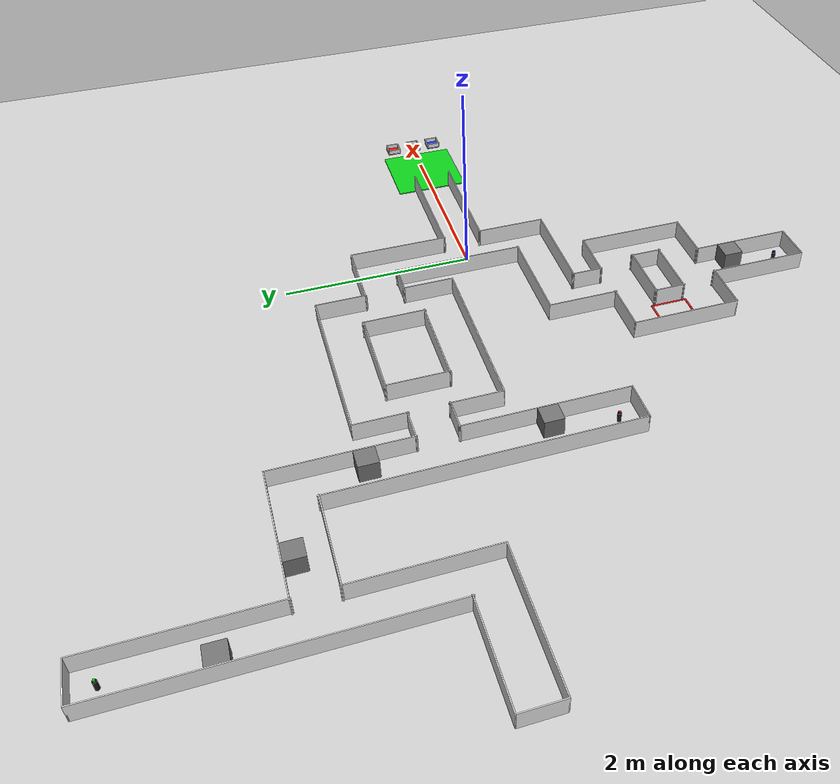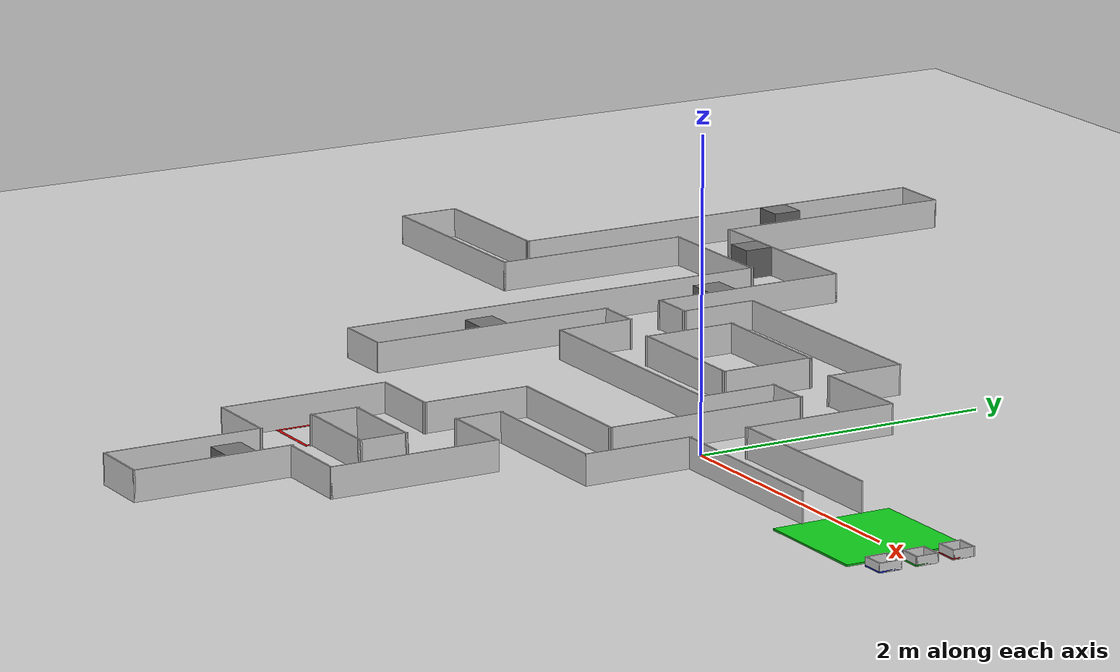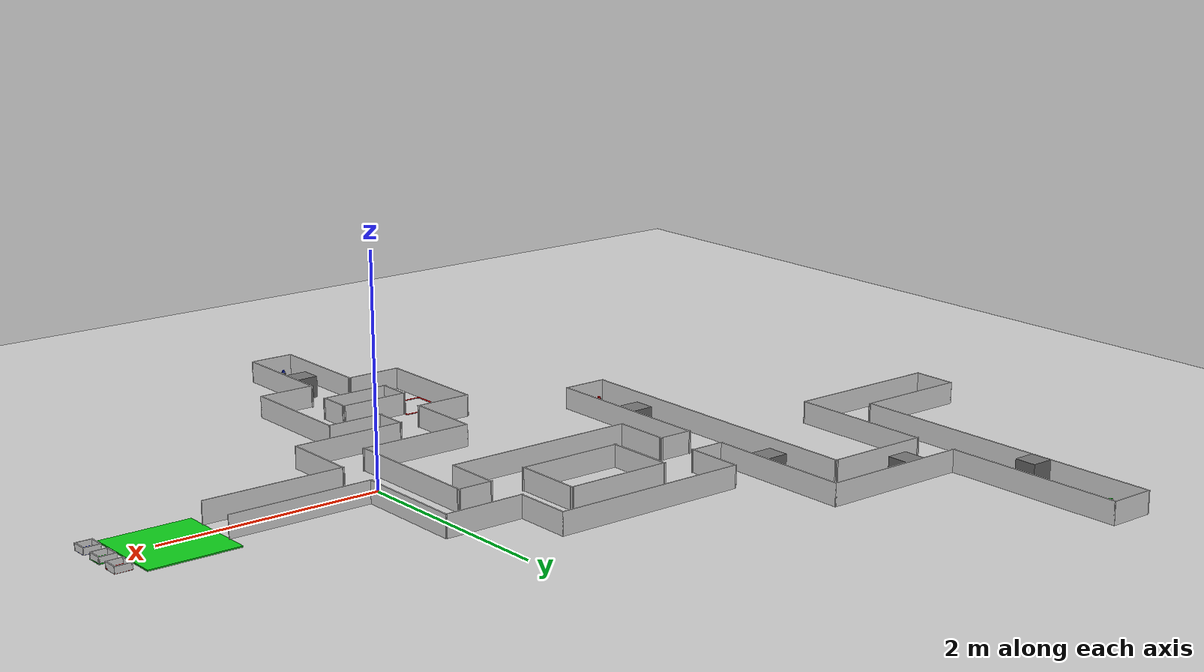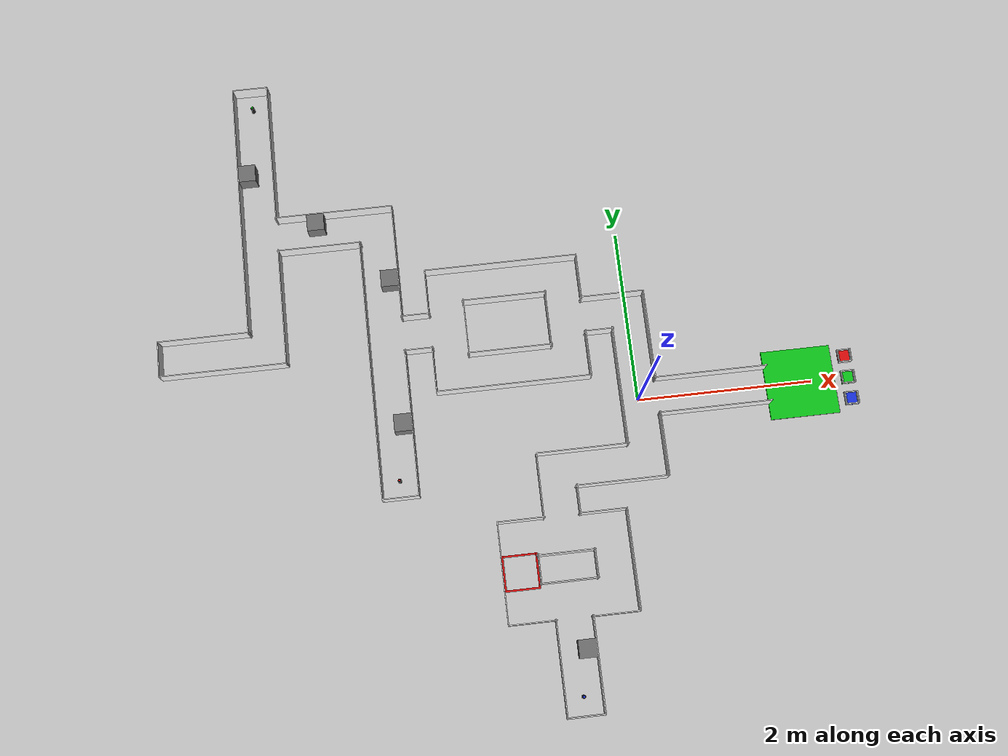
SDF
<sdf version="1.9">
 <world name="colored_objects">
  <physics name="1ms" type="ignored">
   <max_step_size>0.001</max_step_size>
   <real_time_factor>1.0</real_time_factor>
  </physics>
  <plugin filename="gz-sim-physics-system" name="gz::sim::systems::Physics"/>
  <plugin filename="gz-sim-user-commands-system" name="gz::sim::systems::UserCommands"/>
  <plugin filename="gz-sim-scene-broadcaster-system" name="gz::sim::systems::SceneBroadcaster"/>
  <plugin filename="gz-sim-sensors-system" name="gz::sim::systems::Sensors">
   <render_engine>ogre2</render_engine>
  </plugin>
  <light name="sun" type="directional">
   <pose>0 0 10 0 0 0</pose>
   <diffuse>0.9 0.9 0.9 1</diffuse>
   <specular>0.2 0.2 0.2 1</specular>
   <direction>-0.5 0.1 -0.9</direction>
  </light>
  <model name="ground_plane">
   <static>true</static>
   <link name="link">
    <collision name="collision">
     <geometry><plane><normal>0 0 1</normal><size>20 20</size></plane></geometry>
    </collision>
    <visual name="visual">
     <geometry><plane><normal>0 0 1</normal><size>20 20</size></plane></geometry>
     <material>
      <ambient>0.8 0.8 0.8 1</ambient>
      <diffuse>0.8 0.8 0.8 1</diffuse>
      <specular>0.1 0.1 0.1 1</specular>
     </material>
    </visual>
   </link>
  </model>
  <model name="pared_0">
   <static>true</static>
   <pose>-5.405 1.04 0.1 0 0 0</pose>
   <link name="link">
    <collision name="collision"><geometry><box><size>0.01 0.42 0.2</size></box></geometry></collision>
    <visual name="visual">
     <geometry><box><size>0.01 0.42 0.2</size></box></geometry>
     <material>
      <ambient>0.92 0.92 0.92 1</ambient>
      <diffuse>0.92 0.92 0.92 1</diffuse>
      <specular>0.1 0.1 0.1 1</specular>
     </material>
    </visual>
   </link>
  </model>
  <model name="pared_1">
   <static>true</static>
   <pose>-4.365 2.76 0.1 0 0 0</pose>
   <link name="link">
    <collision name="collision"><geometry><box><size>0.01 3.06 0.2</size></box></geometry></collision>
    <visual name="visual">
     <geometry><box><size>0.01 3.06 0.2</size></box></geometry>
     <material>
      <ambient>0.92 0.92 0.92 1</ambient>
      <diffuse>0.92 0.92 0.92 1</diffuse>
      <specular>0.1 0.1 0.1 1</specular>
     </material>
    </visual>
   </link>
  </model>
  <model name="pared_2">
   <static>true</static>
   <pose>-3.955 1.52 0.1 0 0 0</pose>
   <link name="link">
    <collision name="collision"><geometry><box><size>0.01 1.38 0.2</size></box></geometry></collision>
    <visual name="visual">
     <geometry><box><size>0.01 1.38 0.2</size></box></geometry>
     <material>
      <ambient>0.92 0.92 0.92 1</ambient>
      <diffuse>0.92 0.92 0.92 1</diffuse>
      <specular>0.1 0.1 0.1 1</specular>
     </material>
    </visual>
   </link>
  </model>
  <model name="pared_3">
   <static>true</static>
   <pose>-3.955 3.44 0.1 0 0 0</pose>
   <link name="link">
    <collision name="collision"><geometry><box><size>0.01 1.7 0.2</size></box></geometry></collision>
    <visual name="visual">
     <geometry><box><size>0.01 1.7 0.2</size></box></geometry>
     <material>
      <ambient>0.92 0.92 0.92 1</ambient>
      <diffuse>0.92 0.92 0.92 1</diffuse>
      <specular>0.1 0.1 0.1 1</specular>
     </material>
    </visual>
   </link>
  </model>
  <model name="pared_4">
   <static>true</static>
   <pose>-3.005 0.68 0.1 0 0 0</pose>
   <link name="link">
    <collision name="collision"><geometry><box><size>0.01 3.06 0.2</size></box></geometry></collision>
    <visual name="visual">
     <geometry><box><size>0.01 3.06 0.2</size></box></geometry>
     <material>
      <ambient>0.92 0.92 0.92 1</ambient>
      <diffuse>0.92 0.92 0.92 1</diffuse>
      <specular>0.1 0.1 0.1 1</specular>
     </material>
    </visual>
   </link>
  </model>
  <model name="pared_5">
   <static>true</static>
   <pose>-2.595 0.0 0.1 0 0 0</pose>
   <link name="link">
    <collision name="collision"><geometry><box><size>0.01 1.7 0.2</size></box></geometry></collision>
    <visual name="visual">
     <geometry><box><size>0.01 1.7 0.2</size></box></geometry>
     <material>
      <ambient>0.92 0.92 0.92 1</ambient>
      <diffuse>0.92 0.92 0.92 1</diffuse>
      <specular>0.1 0.1 0.1 1</specular>
     </material>
    </visual>
   </link>
  </model>
  <model name="pared_6">
   <static>true</static>
   <pose>-2.595 1.92 0.1 0 0 0</pose>
   <link name="link">
    <collision name="collision"><geometry><box><size>0.01 1.38 0.2</size></box></geometry></collision>
    <visual name="visual">
     <geometry><box><size>0.01 1.38 0.2</size></box></geometry>
     <material>
      <ambient>0.92 0.92 0.92 1</ambient>
      <diffuse>0.92 0.92 0.92 1</diffuse>
      <specular>0.1 0.1 0.1 1</specular>
     </material>
    </visual>
   </link>
  </model>
  <model name="pared_7">
   <static>true</static>
   <pose>-2.285 0.58 0.1 0 0 0</pose>
   <link name="link">
    <collision name="collision"><geometry><box><size>0.01 0.54 0.2</size></box></geometry></collision>
    <visual name="visual">
     <geometry><box><size>0.01 0.54 0.2</size></box></geometry>
     <material>
      <ambient>0.92 0.92 0.92 1</ambient>
      <diffuse>0.92 0.92 0.92 1</diffuse>
      <specular>0.1 0.1 0.1 1</specular>
     </material>
    </visual>
   </link>
  </model>
  <model name="pared_8">
   <static>true</static>
   <pose>-2.285 1.5 0.1 0 0 0</pose>
   <link name="link">
    <collision name="collision"><geometry><box><size>0.01 0.54 0.2</size></box></geometry></collision>
    <visual name="visual">
     <geometry><box><size>0.01 0.54 0.2</size></box></geometry>
     <material>
      <ambient>0.92 0.92 0.92 1</ambient>
      <diffuse>0.92 0.92 0.92 1</diffuse>
      <specular>0.1 0.1 0.1 1</specular>
     </material>
    </visual>
   </link>
  </model>
  <model name="pared_9">
   <static>true</static>
   <pose>-1.875 1.04 0.1 0 0 0</pose>
   <link name="link">
    <collision name="collision"><geometry><box><size>0.01 0.66 0.2</size></box></geometry></collision>
    <visual name="visual">
     <geometry><box><size>0.01 0.66 0.2</size></box></geometry>
     <material>
      <ambient>0.92 0.92 0.92 1</ambient>
      <diffuse>0.92 0.92 0.92 1</diffuse>
      <specular>0.1 0.1 0.1 1</specular>
     </material>
    </visual>
   </link>
  </model>
  <model name="pared_10">
   <static>true</static>
   <pose>-1.765 -1.8 0.1 0 0 0</pose>
   <link name="link">
    <collision name="collision"><geometry><box><size>0.01 1.14 0.2</size></box></geometry></collision>
    <visual name="visual">
     <geometry><box><size>0.01 1.14 0.2</size></box></geometry>
     <material>
      <ambient>0.92 0.92 0.92 1</ambient>
      <diffuse>0.92 0.92 0.92 1</diffuse>
      <specular>0.1 0.1 0.1 1</specular>
     </material>
    </visual>
   </link>
  </model>
  <model name="pared_11">
   <static>true</static>
   <pose>-1.355 -1.8 0.1 0 0 0</pose>
   <link name="link">
    <collision name="collision"><geometry><box><size>0.01 0.34 0.2</size></box></geometry></collision>
    <visual name="visual">
     <geometry><box><size>0.01 0.34 0.2</size></box></geometry>
     <material>
      <ambient>0.92 0.92 0.92 1</ambient>
      <diffuse>0.92 0.92 0.92 1</diffuse>
      <specular>0.1 0.1 0.1 1</specular>
     </material>
    </visual>
   </link>
  </model>
  <model name="pared_12">
   <static>true</static>
   <pose>-1.245 -2.88 0.1 0 0 0</pose>
   <link name="link">
    <collision name="collision"><geometry><box><size>0.01 1.06 0.2</size></box></geometry></collision>
    <visual name="visual">
     <geometry><box><size>0.01 1.06 0.2</size></box></geometry>
     <material>
      <ambient>0.92 0.92 0.92 1</ambient>
      <diffuse>0.92 0.92 0.92 1</diffuse>
      <specular>0.1 0.1 0.1 1</specular>
     </material>
    </visual>
   </link>
  </model>
  <model name="pared_13">
   <static>true</static>
   <pose>-1.245 -0.88 0.1 0 0 0</pose>
   <link name="link">
    <collision name="collision"><geometry><box><size>0.01 0.74 0.2</size></box></geometry></collision>
    <visual name="visual">
     <geometry><box><size>0.01 0.74 0.2</size></box></geometry>
     <material>
      <ambient>0.92 0.92 0.92 1</ambient>
      <diffuse>0.92 0.92 0.92 1</diffuse>
      <specular>0.1 0.1 0.1 1</specular>
     </material>
    </visual>
   </link>
  </model>
  <model name="pared_14">
   <static>true</static>
   <pose>-0.925 1.04 0.1 0 0 0</pose>
   <link name="link">
    <collision name="collision"><geometry><box><size>0.01 0.66 0.2</size></box></geometry></collision>
    <visual name="visual">
     <geometry><box><size>0.01 0.66 0.2</size></box></geometry>
     <material>
      <ambient>0.92 0.92 0.92 1</ambient>
      <diffuse>0.92 0.92 0.92 1</diffuse>
      <specular>0.1 0.1 0.1 1</specular>
     </material>
    </visual>
   </link>
  </model>
  <model name="pared_15">
   <static>true</static>
   <pose>-0.835 -2.88 0.1 0 0 0</pose>
   <link name="link">
    <collision name="collision"><geometry><box><size>0.01 1.06 0.2</size></box></geometry></collision>
    <visual name="visual">
     <geometry><box><size>0.01 1.06 0.2</size></box></geometry>
     <material>
      <ambient>0.92 0.92 0.92 1</ambient>
      <diffuse>0.92 0.92 0.92 1</diffuse>
      <specular>0.1 0.1 0.1 1</specular>
     </material>
    </visual>
   </link>
  </model>
  <model name="pared_16">
   <static>true</static>
   <pose>-0.835 -1.08 0.1 0 0 0</pose>
   <link name="link">
    <collision name="collision"><geometry><box><size>0.01 0.34 0.2</size></box></geometry></collision>
    <visual name="visual">
     <geometry><box><size>0.01 0.34 0.2</size></box></geometry>
     <material>
      <ambient>0.92 0.92 0.92 1</ambient>
      <diffuse>0.92 0.92 0.92 1</diffuse>
      <specular>0.1 0.1 0.1 1</specular>
     </material>
    </visual>
   </link>
  </model>
  <model name="pared_17">
   <static>true</static>
   <pose>-0.725 -1.8 0.1 0 0 0</pose>
   <link name="link">
    <collision name="collision"><geometry><box><size>0.01 0.34 0.2</size></box></geometry></collision>
    <visual name="visual">
     <geometry><box><size>0.01 0.34 0.2</size></box></geometry>
     <material>
      <ambient>0.92 0.92 0.92 1</ambient>
      <diffuse>0.92 0.92 0.92 1</diffuse>
      <specular>0.1 0.1 0.1 1</specular>
     </material>
    </visual>
   </link>
  </model>
  <model name="pared_18">
   <static>true</static>
   <pose>-0.515 0.58 0.1 0 0 0</pose>
   <link name="link">
    <collision name="collision"><geometry><box><size>0.01 0.54 0.2</size></box></geometry></collision>
    <visual name="visual">
     <geometry><box><size>0.01 0.54 0.2</size></box></geometry>
     <material>
      <ambient>0.92 0.92 0.92 1</ambient>
      <diffuse>0.92 0.92 0.92 1</diffuse>
      <specular>0.1 0.1 0.1 1</specular>
     </material>
    </visual>
   </link>
  </model>
  <model name="pared_19">
   <static>true</static>
   <pose>-0.515 1.5 0.1 0 0 0</pose>
   <link name="link">
    <collision name="collision"><geometry><box><size>0.01 0.54 0.2</size></box></geometry></collision>
    <visual name="visual">
     <geometry><box><size>0.01 0.54 0.2</size></box></geometry>
     <material>
      <ambient>0.92 0.92 0.92 1</ambient>
      <diffuse>0.92 0.92 0.92 1</diffuse>
      <specular>0.1 0.1 0.1 1</specular>
     </material>
    </visual>
   </link>
  </model>
  <model name="pared_20">
   <static>true</static>
   <pose>-0.315 -1.8 0.1 0 0 0</pose>
   <link name="link">
    <collision name="collision"><geometry><box><size>0.01 1.14 0.2</size></box></geometry></collision>
    <visual name="visual">
     <geometry><box><size>0.01 1.14 0.2</size></box></geometry>
     <material>
      <ambient>0.92 0.92 0.92 1</ambient>
      <diffuse>0.92 0.92 0.92 1</diffuse>
      <specular>0.1 0.1 0.1 1</specular>
     </material>
    </visual>
   </link>
  </model>
  <model name="pared_21">
   <static>true</static>
   <pose>-0.205 0.16 0.1 0 0 0</pose>
   <link name="link">
    <collision name="collision"><geometry><box><size>0.01 1.38 0.2</size></box></geometry></collision>
    <visual name="visual">
     <geometry><box><size>0.01 1.38 0.2</size></box></geometry>
     <material>
      <ambient>0.92 0.92 0.92 1</ambient>
      <diffuse>0.92 0.92 0.92 1</diffuse>
      <specular>0.1 0.1 0.1 1</specular>
     </material>
    </visual>
   </link>
  </model>
  <model name="pared_22">
   <static>true</static>
   <pose>0.205 -0.56 0.1 0 0 0</pose>
   <link name="link">
    <collision name="collision"><geometry><box><size>0.01 0.74 0.2</size></box></geometry></collision>
    <visual name="visual">
     <geometry><box><size>0.01 0.74 0.2</size></box></geometry>
     <material>
      <ambient>0.92 0.92 0.92 1</ambient>
      <diffuse>0.92 0.92 0.92 1</diffuse>
      <specular>0.1 0.1 0.1 1</specular>
     </material>
    </visual>
   </link>
  </model>
  <model name="pared_23">
   <static>true</static>
   <pose>0.205 0.72 0.1 0 0 0</pose>
   <link name="link">
    <collision name="collision"><geometry><box><size>0.01 1.06 0.2</size></box></geometry></collision>
    <visual name="visual">
     <geometry><box><size>0.01 1.06 0.2</size></box></geometry>
     <material>
      <ambient>0.92 0.92 0.92 1</ambient>
      <diffuse>0.92 0.92 0.92 1</diffuse>
      <specular>0.1 0.1 0.1 1</specular>
     </material>
    </visual>
   </link>
  </model>
  <model name="pared_24">
   <static>true</static>
   <pose>-1.04 -3.405 0.1 0 0 0</pose>
   <link name="link">
    <collision name="collision"><geometry><box><size>0.42 0.01 0.2</size></box></geometry></collision>
    <visual name="visual">
     <geometry><box><size>0.42 0.01 0.2</size></box></geometry>
     <material>
      <ambient>0.92 0.92 0.92 1</ambient>
      <diffuse>0.92 0.92 0.92 1</diffuse>
      <specular>0.1 0.1 0.1 1</specular>
     </material>
    </visual>
   </link>
  </model>
  <model name="pared_25">
   <static>true</static>
   <pose>-1.5 -2.365 0.1 0 0 0</pose>
   <link name="link">
    <collision name="collision"><geometry><box><size>0.54 0.01 0.2</size></box></geometry></collision>
    <visual name="visual">
     <geometry><box><size>0.54 0.01 0.2</size></box></geometry>
     <material>
      <ambient>0.92 0.92 0.92 1</ambient>
      <diffuse>0.92 0.92 0.92 1</diffuse>
      <specular>0.1 0.1 0.1 1</specular>
     </material>
    </visual>
   </link>
  </model>
  <model name="pared_26">
   <static>true</static>
   <pose>-0.58 -2.365 0.1 0 0 0</pose>
   <link name="link">
    <collision name="collision"><geometry><box><size>0.54 0.01 0.2</size></box></geometry></collision>
    <visual name="visual">
     <geometry><box><size>0.54 0.01 0.2</size></box></geometry>
     <material>
      <ambient>0.92 0.92 0.92 1</ambient>
      <diffuse>0.92 0.92 0.92 1</diffuse>
      <specular>0.1 0.1 0.1 1</specular>
     </material>
    </visual>
   </link>
  </model>
  <model name="pared_27">
   <static>true</static>
   <pose>-1.04 -1.955 0.1 0 0 0</pose>
   <link name="link">
    <collision name="collision"><geometry><box><size>0.66 0.01 0.2</size></box></geometry></collision>
    <visual name="visual">
     <geometry><box><size>0.66 0.01 0.2</size></box></geometry>
     <material>
      <ambient>0.92 0.92 0.92 1</ambient>
      <diffuse>0.92 0.92 0.92 1</diffuse>
      <specular>0.1 0.1 0.1 1</specular>
     </material>
    </visual>
   </link>
  </model>
  <model name="pared_28">
   <static>true</static>
   <pose>-1.04 -1.645 0.1 0 0 0</pose>
   <link name="link">
    <collision name="collision"><geometry><box><size>0.66 0.01 0.2</size></box></geometry></collision>
    <visual name="visual">
     <geometry><box><size>0.66 0.01 0.2</size></box></geometry>
     <material>
      <ambient>0.92 0.92 0.92 1</ambient>
      <diffuse>0.92 0.92 0.92 1</diffuse>
      <specular>0.1 0.1 0.1 1</specular>
     </material>
    </visual>
   </link>
  </model>
  <model name="pared_29">
   <static>true</static>
   <pose>-1.5 -1.235 0.1 0 0 0</pose>
   <link name="link">
    <collision name="collision"><geometry><box><size>0.54 0.01 0.2</size></box></geometry></collision>
    <visual name="visual">
     <geometry><box><size>0.54 0.01 0.2</size></box></geometry>
     <material>
      <ambient>0.92 0.92 0.92 1</ambient>
      <diffuse>0.92 0.92 0.92 1</diffuse>
      <specular>0.1 0.1 0.1 1</specular>
     </material>
    </visual>
   </link>
  </model>
  <model name="pared_30">
   <static>true</static>
   <pose>-0.58 -1.235 0.1 0 0 0</pose>
   <link name="link">
    <collision name="collision"><geometry><box><size>0.54 0.01 0.2</size></box></geometry></collision>
    <visual name="visual">
     <geometry><box><size>0.54 0.01 0.2</size></box></geometry>
     <material>
      <ambient>0.92 0.92 0.92 1</ambient>
      <diffuse>0.92 0.92 0.92 1</diffuse>
      <specular>0.1 0.1 0.1 1</specular>
     </material>
    </visual>
   </link>
  </model>
  <model name="pared_31">
   <static>true</static>
   <pose>-0.32 -0.925 0.1 0 0 0</pose>
   <link name="link">
    <collision name="collision"><geometry><box><size>1.06 0.01 0.2</size></box></geometry></collision>
    <visual name="visual">
     <geometry><box><size>1.06 0.01 0.2</size></box></geometry>
     <material>
      <ambient>0.92 0.92 0.92 1</ambient>
      <diffuse>0.92 0.92 0.92 1</diffuse>
      <specular>0.1 0.1 0.1 1</specular>
     </material>
    </visual>
   </link>
  </model>
  <model name="pared_32">
   <static>true</static>
   <pose>-2.8 -0.845 0.1 0 0 0</pose>
   <link name="link">
    <collision name="collision"><geometry><box><size>0.42 0.01 0.2</size></box></geometry></collision>
    <visual name="visual">
     <geometry><box><size>0.42 0.01 0.2</size></box></geometry>
     <material>
      <ambient>0.92 0.92 0.92 1</ambient>
      <diffuse>0.92 0.92 0.92 1</diffuse>
      <specular>0.1 0.1 0.1 1</specular>
     </material>
    </visual>
   </link>
  </model>
  <model name="pared_33">
   <static>true</static>
   <pose>-0.72 -0.515 0.1 0 0 0</pose>
   <link name="link">
    <collision name="collision"><geometry><box><size>1.06 0.01 0.2</size></box></geometry></collision>
    <visual name="visual">
     <geometry><box><size>1.06 0.01 0.2</size></box></geometry>
     <material>
      <ambient>0.92 0.92 0.92 1</ambient>
      <diffuse>0.92 0.92 0.92 1</diffuse>
      <specular>0.1 0.1 0.1 1</specular>
     </material>
    </visual>
   </link>
  </model>
  <model name="pared_34">
   <static>true</static>
   <pose>0.84 -0.205 0.1 0 0 0</pose>
   <link name="link">
    <collision name="collision"><geometry><box><size>1.3 0.01 0.2</size></box></geometry></collision>
    <visual name="visual">
     <geometry><box><size>1.3 0.01 0.2</size></box></geometry>
     <material>
      <ambient>0.92 0.92 0.92 1</ambient>
      <diffuse>0.92 0.92 0.92 1</diffuse>
      <specular>0.1 0.1 0.1 1</specular>
     </material>
    </visual>
   </link>
  </model>
  <model name="pared_35">
   <static>true</static>
   <pose>0.84 0.205 0.1 0 0 0</pose>
   <link name="link">
    <collision name="collision"><geometry><box><size>1.3 0.01 0.2</size></box></geometry></collision>
    <visual name="visual">
     <geometry><box><size>1.3 0.01 0.2</size></box></geometry>
     <material>
      <ambient>0.92 0.92 0.92 1</ambient>
      <diffuse>0.92 0.92 0.92 1</diffuse>
      <specular>0.1 0.1 0.1 1</specular>
     </material>
    </visual>
   </link>
  </model>
  <model name="pared_36">
   <static>true</static>
   <pose>-1.4 0.315 0.1 0 0 0</pose>
   <link name="link">
    <collision name="collision"><geometry><box><size>1.78 0.01 0.2</size></box></geometry></collision>
    <visual name="visual">
     <geometry><box><size>1.78 0.01 0.2</size></box></geometry>
     <material>
      <ambient>0.92 0.92 0.92 1</ambient>
      <diffuse>0.92 0.92 0.92 1</diffuse>
      <specular>0.1 0.1 0.1 1</specular>
     </material>
    </visual>
   </link>
  </model>
  <model name="pared_37">
   <static>true</static>
   <pose>-1.4 0.725 0.1 0 0 0</pose>
   <link name="link">
    <collision name="collision"><geometry><box><size>0.98 0.01 0.2</size></box></geometry></collision>
    <visual name="visual">
     <geometry><box><size>0.98 0.01 0.2</size></box></geometry>
     <material>
      <ambient>0.92 0.92 0.92 1</ambient>
      <diffuse>0.92 0.92 0.92 1</diffuse>
      <specular>0.1 0.1 0.1 1</specular>
     </material>
    </visual>
   </link>
  </model>
  <model name="pared_38">
   <static>true</static>
   <pose>-4.68 0.835 0.1 0 0 0</pose>
   <link name="link">
    <collision name="collision"><geometry><box><size>1.46 0.01 0.2</size></box></geometry></collision>
    <visual name="visual">
     <geometry><box><size>1.46 0.01 0.2</size></box></geometry>
     <material>
      <ambient>0.92 0.92 0.92 1</ambient>
      <diffuse>0.92 0.92 0.92 1</diffuse>
      <specular>0.1 0.1 0.1 1</specular>
     </material>
    </visual>
   </link>
  </model>
  <model name="pared_39">
   <static>true</static>
   <pose>-2.44 0.835 0.1 0 0 0</pose>
   <link name="link">
    <collision name="collision"><geometry><box><size>0.34 0.01 0.2</size></box></geometry></collision>
    <visual name="visual">
     <geometry><box><size>0.34 0.01 0.2</size></box></geometry>
     <material>
      <ambient>0.92 0.92 0.92 1</ambient>
      <diffuse>0.92 0.92 0.92 1</diffuse>
      <specular>0.1 0.1 0.1 1</specular>
     </material>
    </visual>
   </link>
  </model>
  <model name="pared_40">
   <static>true</static>
   <pose>-0.36 0.835 0.1 0 0 0</pose>
   <link name="link">
    <collision name="collision"><geometry><box><size>0.34 0.01 0.2</size></box></geometry></collision>
    <visual name="visual">
     <geometry><box><size>0.34 0.01 0.2</size></box></geometry>
     <material>
      <ambient>0.92 0.92 0.92 1</ambient>
      <diffuse>0.92 0.92 0.92 1</diffuse>
      <specular>0.1 0.1 0.1 1</specular>
     </material>
    </visual>
   </link>
  </model>
  <model name="pared_41">
   <static>true</static>
   <pose>-4.88 1.245 0.1 0 0 0</pose>
   <link name="link">
    <collision name="collision"><geometry><box><size>1.06 0.01 0.2</size></box></geometry></collision>
    <visual name="visual">
     <geometry><box><size>1.06 0.01 0.2</size></box></geometry>
     <material>
      <ambient>0.92 0.92 0.92 1</ambient>
      <diffuse>0.92 0.92 0.92 1</diffuse>
      <specular>0.1 0.1 0.1 1</specular>
     </material>
    </visual>
   </link>
  </model>
  <model name="pared_42">
   <static>true</static>
   <pose>-2.44 1.245 0.1 0 0 0</pose>
   <link name="link">
    <collision name="collision"><geometry><box><size>0.34 0.01 0.2</size></box></geometry></collision>
    <visual name="visual">
     <geometry><box><size>0.34 0.01 0.2</size></box></geometry>
     <material>
      <ambient>0.92 0.92 0.92 1</ambient>
      <diffuse>0.92 0.92 0.92 1</diffuse>
      <specular>0.1 0.1 0.1 1</specular>
     </material>
    </visual>
   </link>
  </model>
  <model name="pared_43">
   <static>true</static>
   <pose>-0.16 1.245 0.1 0 0 0</pose>
   <link name="link">
    <collision name="collision"><geometry><box><size>0.74 0.01 0.2</size></box></geometry></collision>
    <visual name="visual">
     <geometry><box><size>0.74 0.01 0.2</size></box></geometry>
     <material>
      <ambient>0.92 0.92 0.92 1</ambient>
      <diffuse>0.92 0.92 0.92 1</diffuse>
      <specular>0.1 0.1 0.1 1</specular>
     </material>
    </visual>
   </link>
  </model>
  <model name="pared_44">
   <static>true</static>
   <pose>-1.4 1.355 0.1 0 0 0</pose>
   <link name="link">
    <collision name="collision"><geometry><box><size>0.98 0.01 0.2</size></box></geometry></collision>
    <visual name="visual">
     <geometry><box><size>0.98 0.01 0.2</size></box></geometry>
     <material>
      <ambient>0.92 0.92 0.92 1</ambient>
      <diffuse>0.92 0.92 0.92 1</diffuse>
      <specular>0.1 0.1 0.1 1</specular>
     </material>
    </visual>
   </link>
  </model>
  <model name="pared_45">
   <static>true</static>
   <pose>-1.4 1.765 0.1 0 0 0</pose>
   <link name="link">
    <collision name="collision"><geometry><box><size>1.78 0.01 0.2</size></box></geometry></collision>
    <visual name="visual">
     <geometry><box><size>1.78 0.01 0.2</size></box></geometry>
     <material>
      <ambient>0.92 0.92 0.92 1</ambient>
      <diffuse>0.92 0.92 0.92 1</diffuse>
      <specular>0.1 0.1 0.1 1</specular>
     </material>
    </visual>
   </link>
  </model>
  <model name="pared_46">
   <static>true</static>
   <pose>-3.48 2.195 0.1 0 0 0</pose>
   <link name="link">
    <collision name="collision"><geometry><box><size>0.98 0.01 0.2</size></box></geometry></collision>
    <visual name="visual">
     <geometry><box><size>0.98 0.01 0.2</size></box></geometry>
     <material>
      <ambient>0.92 0.92 0.92 1</ambient>
      <diffuse>0.92 0.92 0.92 1</diffuse>
      <specular>0.1 0.1 0.1 1</specular>
     </material>
    </visual>
   </link>
  </model>
  <model name="pared_47">
   <static>true</static>
   <pose>-3.28 2.605 0.1 0 0 0</pose>
   <link name="link">
    <collision name="collision"><geometry><box><size>1.38 0.01 0.2</size></box></geometry></collision>
    <visual name="visual">
     <geometry><box><size>1.38 0.01 0.2</size></box></geometry>
     <material>
      <ambient>0.92 0.92 0.92 1</ambient>
      <diffuse>0.92 0.92 0.92 1</diffuse>
      <specular>0.1 0.1 0.1 1</specular>
     </material>
    </visual>
   </link>
  </model>
  <model name="pared_48">
   <static>true</static>
   <pose>-4.16 4.285 0.1 0 0 0</pose>
   <link name="link">
    <collision name="collision"><geometry><box><size>0.42 0.01 0.2</size></box></geometry></collision>
    <visual name="visual">
     <geometry><box><size>0.42 0.01 0.2</size></box></geometry>
     <material>
      <ambient>0.92 0.92 0.92 1</ambient>
      <diffuse>0.92 0.92 0.92 1</diffuse>
      <specular>0.1 0.1 0.1 1</specular>
     </material>
    </visual>
   </link>
  </model>
  <model name="start_marker">
   <static>true</static>
   <pose>1.88 0 -0.019 0 0 3.141592653589793</pose>
   <link name="link">
    <visual name="visual">
     <geometry><box><size>0.8 0.8 0.04</size></box></geometry>
     <material>
      <ambient>0.05 0.8 0.1 1</ambient>
      <diffuse>0.05 0.8 0.1 1</diffuse>
      <specular>0.1 0.1 0.1 1</specular>
     </material>
    </visual>
   </link>
  </model>
  <model name="container_rojo">
   <static>true</static>
   <pose>2.43 0.25 0 0 0 0</pose>
   <link name="link">
    <collision name="floor_collision">
     <pose>0 0 0.005 0 0 0</pose>
     <geometry><box><size>0.15 0.15 0.01</size></box></geometry>
    </collision>
    <visual name="floor_visual">
     <pose>0 0 0.005 0 0 0</pose>
     <geometry><box><size>0.15 0.15 0.01</size></box></geometry>
     <material>
      <ambient>0.9 0.05 0.05 1</ambient>
      <diffuse>0.9 0.05 0.05 1</diffuse>
      <specular>0.1 0.1 0.1 1</specular>
     </material>
    </visual>
    <collision name="side_n_collision">
     <pose>0 0.06999999999999999 0.03 0 0 0</pose>
     <geometry><box><size>0.15 0.01 0.06</size></box></geometry>
    </collision>
    <visual name="side_n_visual">
     <pose>0 0.06999999999999999 0.03 0 0 0</pose>
     <geometry><box><size>0.15 0.01 0.06</size></box></geometry>
     <material>
      <ambient>0.92 0.92 0.92 1</ambient>
      <diffuse>0.92 0.92 0.92 1</diffuse>
      <specular>0.1 0.1 0.1 1</specular>
     </material>
    </visual>
    <collision name="side_s_collision">
     <pose>0 -0.06999999999999999 0.03 0 0 0</pose>
     <geometry><box><size>0.15 0.01 0.06</size></box></geometry>
    </collision>
    <visual name="side_s_visual">
     <pose>0 -0.06999999999999999 0.03 0 0 0</pose>
     <geometry><box><size>0.15 0.01 0.06</size></box></geometry>
     <material>
      <ambient>0.92 0.92 0.92 1</ambient>
      <diffuse>0.92 0.92 0.92 1</diffuse>
      <specular>0.1 0.1 0.1 1</specular>
     </material>
    </visual>
    <collision name="side_e_collision">
     <pose>0.06999999999999999 0 0.03 0 0 0</pose>
     <geometry><box><size>0.01 0.15 0.06</size></box></geometry>
    </collision>
    <visual name="side_e_visual">
     <pose>0.06999999999999999 0 0.03 0 0 0</pose>
     <geometry><box><size>0.01 0.15 0.06</size></box></geometry>
     <material>
      <ambient>0.92 0.92 0.92 1</ambient>
      <diffuse>0.92 0.92 0.92 1</diffuse>
      <specular>0.1 0.1 0.1 1</specular>
     </material>
    </visual>
    <collision name="side_w_collision">
     <pose>-0.06999999999999999 0 0.03 0 0 0</pose>
     <geometry><box><size>0.01 0.15 0.06</size></box></geometry>
    </collision>
    <visual name="side_w_visual">
     <pose>-0.06999999999999999 0 0.03 0 0 0</pose>
     <geometry><box><size>0.01 0.15 0.06</size></box></geometry>
     <material>
      <ambient>0.92 0.92 0.92 1</ambient>
      <diffuse>0.92 0.92 0.92 1</diffuse>
      <specular>0.1 0.1 0.1 1</specular>
     </material>
    </visual>
   </link>
  </model>
  <model name="container_verde">
   <static>true</static>
   <pose>2.43 0 0 0 0 0</pose>
   <link name="link">
    <collision name="floor_collision">
     <pose>0 0 0.005 0 0 0</pose>
     <geometry><box><size>0.15 0.15 0.01</size></box></geometry>
    </collision>
    <visual name="floor_visual">
     <pose>0 0 0.005 0 0 0</pose>
     <geometry><box><size>0.15 0.15 0.01</size></box></geometry>
     <material>
      <ambient>0.05 0.8 0.1 1</ambient>
      <diffuse>0.05 0.8 0.1 1</diffuse>
      <specular>0.1 0.1 0.1 1</specular>
     </material>
    </visual>
    <collision name="side_n_collision">
     <pose>0 0.06999999999999999 0.03 0 0 0</pose>
     <geometry><box><size>0.15 0.01 0.06</size></box></geometry>
    </collision>
    <visual name="side_n_visual">
     <pose>0 0.06999999999999999 0.03 0 0 0</pose>
     <geometry><box><size>0.15 0.01 0.06</size></box></geometry>
     <material>
      <ambient>0.92 0.92 0.92 1</ambient>
      <diffuse>0.92 0.92 0.92 1</diffuse>
      <specular>0.1 0.1 0.1 1</specular>
     </material>
    </visual>
    <collision name="side_s_collision">
     <pose>0 -0.06999999999999999 0.03 0 0 0</pose>
     <geometry><box><size>0.15 0.01 0.06</size></box></geometry>
    </collision>
    <visual name="side_s_visual">
     <pose>0 -0.06999999999999999 0.03 0 0 0</pose>
     <geometry><box><size>0.15 0.01 0.06</size></box></geometry>
     <material>
      <ambient>0.92 0.92 0.92 1</ambient>
      <diffuse>0.92 0.92 0.92 1</diffuse>
      <specular>0.1 0.1 0.1 1</specular>
     </material>
    </visual>
    <collision name="side_e_collision">
     <pose>0.06999999999999999 0 0.03 0 0 0</pose>
     <geometry><box><size>0.01 0.15 0.06</size></box></geometry>
    </collision>
    <visual name="side_e_visual">
     <pose>0.06999999999999999 0 0.03 0 0 0</pose>
     <geometry><box><size>0.01 0.15 0.06</size></box></geometry>
     <material>
      <ambient>0.92 0.92 0.92 1</ambient>
      <diffuse>0.92 0.92 0.92 1</diffuse>
      <specular>0.1 0.1 0.1 1</specular>
     </material>
    </visual>
    <collision name="side_w_collision">
     <pose>-0.06999999999999999 0 0.03 0 0 0</pose>
     <geometry><box><size>0.01 0.15 0.06</size></box></geometry>
    </collision>
    <visual name="side_w_visual">
     <pose>-0.06999999999999999 0 0.03 0 0 0</pose>
     <geometry><box><size>0.01 0.15 0.06</size></box></geometry>
     <material>
      <ambient>0.92 0.92 0.92 1</ambient>
      <diffuse>0.92 0.92 0.92 1</diffuse>
      <specular>0.1 0.1 0.1 1</specular>
     </material>
    </visual>
   </link>
  </model>
  <model name="container_azul">
   <static>true</static>
   <pose>2.43 -0.25 0 0 0 0</pose>
   <link name="link">
    <collision name="floor_collision">
     <pose>0 0 0.005 0 0 0</pose>
     <geometry><box><size>0.15 0.15 0.01</size></box></geometry>
    </collision>
    <visual name="floor_visual">
     <pose>0 0 0.005 0 0 0</pose>
     <geometry><box><size>0.15 0.15 0.01</size></box></geometry>
     <material>
      <ambient>0.1 0.2 0.9 1</ambient>
      <diffuse>0.1 0.2 0.9 1</diffuse>
      <specular>0.1 0.1 0.1 1</specular>
     </material>
    </visual>
    <collision name="side_n_collision">
     <pose>0 0.06999999999999999 0.03 0 0 0</pose>
     <geometry><box><size>0.15 0.01 0.06</size></box></geometry>
    </collision>
    <visual name="side_n_visual">
     <pose>0 0.06999999999999999 0.03 0 0 0</pose>
     <geometry><box><size>0.15 0.01 0.06</size></box></geometry>
     <material>
      <ambient>0.92 0.92 0.92 1</ambient>
      <diffuse>0.92 0.92 0.92 1</diffuse>
      <specular>0.1 0.1 0.1 1</specular>
     </material>
    </visual>
    <collision name="side_s_collision">
     <pose>0 -0.06999999999999999 0.03 0 0 0</pose>
     <geometry><box><size>0.15 0.01 0.06</size></box></geometry>
    </collision>
    <visual name="side_s_visual">
     <pose>0 -0.06999999999999999 0.03 0 0 0</pose>
     <geometry><box><size>0.15 0.01 0.06</size></box></geometry>
     <material>
      <ambient>0.92 0.92 0.92 1</ambient>
      <diffuse>0.92 0.92 0.92 1</diffuse>
      <specular>0.1 0.1 0.1 1</specular>
     </material>
    </visual>
    <collision name="side_e_collision">
     <pose>0.06999999999999999 0 0.03 0 0 0</pose>
     <geometry><box><size>0.01 0.15 0.06</size></box></geometry>
    </collision>
    <visual name="side_e_visual">
     <pose>0.06999999999999999 0 0.03 0 0 0</pose>
     <geometry><box><size>0.01 0.15 0.06</size></box></geometry>
     <material>
      <ambient>0.92 0.92 0.92 1</ambient>
      <diffuse>0.92 0.92 0.92 1</diffuse>
      <specular>0.1 0.1 0.1 1</specular>
     </material>
    </visual>
    <collision name="side_w_collision">
     <pose>-0.06999999999999999 0 0.03 0 0 0</pose>
     <geometry><box><size>0.01 0.15 0.06</size></box></geometry>
    </collision>
    <visual name="side_w_visual">
     <pose>-0.06999999999999999 0 0.03 0 0 0</pose>
     <geometry><box><size>0.01 0.15 0.06</size></box></geometry>
     <material>
      <ambient>0.92 0.92 0.92 1</ambient>
      <diffuse>0.92 0.92 0.92 1</diffuse>
      <specular>0.1 0.1 0.1 1</specular>
     </material>
    </visual>
   </link>
  </model>
  <model name="cylinder_rojo">
   <static>true</static>
   <pose>-2.8 -0.64 0.05 0 0 0</pose>
   <link name="cylinder">
    <collision name="cylinder_collision">
     <geometry><cylinder><radius>0.02</radius><length>0.1</length></cylinder></geometry>
    </collision>
    <visual name="cylinder_visual">
     <geometry><cylinder><radius>0.02</radius><length>0.1</length></cylinder></geometry>
     <material>
      <ambient>0.1 0.1 0.1 1</ambient>
      <diffuse>0.1 0.1 0.1 1</diffuse>
      <specular>0.1 0.1 0.1 1</specular>
     </material>
    </visual>
   </link>
  </model>
  <model name="box_rojo">
   <pose>-2.8 -0.64 0.111 0 0 0</pose>
   <link name="link">
    <inertial>
     <mass>0.02</mass>
     <inertia>
      <ixx>1.3333333333333336e-06</ixx>
      <iyy>1.3333333333333336e-06</iyy>
      <izz>1.3333333333333336e-06</izz>
      <ixy>0</ixy>
      <ixz>0</ixz>
      <iyz>0</iyz>
     </inertia>
    </inertial>
    <collision name="collision"><geometry><box><size>0.02 0.02 0.02</size></box></geometry></collision>
    <visual name="visual">
     <geometry><box><size>0.02 0.02 0.02</size></box></geometry>
     <material>
      <ambient>0.9 0.05 0.05 1</ambient>
      <diffuse>0.9 0.05 0.05 1</diffuse>
      <specular>0.1 0.1 0.1 1</specular>
     </material>
    </visual>
   </link>
  </model>
  <model name="cylinder_verde">
   <static>true</static>
   <pose>-4.16 4.08 0.05 0 0 0</pose>
   <link name="cylinder">
    <collision name="cylinder_collision">
     <geometry><cylinder><radius>0.02</radius><length>0.1</length></cylinder></geometry>
    </collision>
    <visual name="cylinder_visual">
     <geometry><cylinder><radius>0.02</radius><length>0.1</length></cylinder></geometry>
     <material>
      <ambient>0.1 0.1 0.1 1</ambient>
      <diffuse>0.1 0.1 0.1 1</diffuse>
      <specular>0.1 0.1 0.1 1</specular>
     </material>
    </visual>
   </link>
  </model>
  <model name="box_verde">
   <pose>-4.16 4.08 0.111 0 0 0</pose>
   <link name="link">
    <inertial>
     <mass>0.02</mass>
     <inertia>
      <ixx>1.3333333333333336e-06</ixx>
      <iyy>1.3333333333333336e-06</iyy>
      <izz>1.3333333333333336e-06</izz>
      <ixy>0</ixy>
      <ixz>0</ixz>
      <iyz>0</iyz>
     </inertia>
    </inertial>
    <collision name="collision"><geometry><box><size>0.02 0.02 0.02</size></box></geometry></collision>
    <visual name="visual">
     <geometry><box><size>0.02 0.02 0.02</size></box></geometry>
     <material>
      <ambient>0.05 0.8 0.1 1</ambient>
      <diffuse>0.05 0.8 0.1 1</diffuse>
      <specular>0.1 0.1 0.1 1</specular>
     </material>
    </visual>
   </link>
  </model>
  <model name="cylinder_azul">
   <static>true</static>
   <pose>-1.04 -3.2 0.05 0 0 0</pose>
   <link name="cylinder">
    <collision name="cylinder_collision">
     <geometry><cylinder><radius>0.02</radius><length>0.1</length></cylinder></geometry>
    </collision>
    <visual name="cylinder_visual">
     <geometry><cylinder><radius>0.02</radius><length>0.1</length></cylinder></geometry>
     <material>
      <ambient>0.1 0.1 0.1 1</ambient>
      <diffuse>0.1 0.1 0.1 1</diffuse>
      <specular>0.1 0.1 0.1 1</specular>
     </material>
    </visual>
   </link>
  </model>
  <model name="box_azul">
   <pose>-1.04 -3.2 0.111 0 0 0</pose>
   <link name="link">
    <inertial>
     <mass>0.02</mass>
     <inertia>
      <ixx>1.3333333333333336e-06</ixx>
      <iyy>1.3333333333333336e-06</iyy>
      <izz>1.3333333333333336e-06</izz>
      <ixy>0</ixy>
      <ixz>0</ixz>
      <iyz>0</iyz>
     </inertia>
    </inertial>
    <collision name="collision"><geometry><box><size>0.02 0.02 0.02</size></box></geometry></collision>
    <visual name="visual">
     <geometry><box><size>0.02 0.02 0.02</size></box></geometry>
     <material>
      <ambient>0.1 0.2 0.9 1</ambient>
      <diffuse>0.1 0.2 0.9 1</diffuse>
      <specular>0.1 0.1 0.1 1</specular>
     </material>
    </visual>
   </link>
  </model>
  <model name="prohibida_isla_chica">
   <static>true</static>
   <pose>-1.56 -1.8 0 0 0 0</pose>
   <link name="link">
    <visual name="side_n">
     <pose>0 0.19 0.001 0 0 0</pose>
     <geometry><box><size>0.4 0.02 0.002</size></box></geometry>
     <material>
      <ambient>0.9 0.05 0.05 1</ambient>
      <diffuse>0.9 0.05 0.05 1</diffuse>
      <specular>0.1 0.1 0.1 1</specular>
     </material>
    </visual>
    <visual name="side_s">
     <pose>0 -0.19 0.001 0 0 0</pose>
     <geometry><box><size>0.4 0.02 0.002</size></box></geometry>
     <material>
      <ambient>0.9 0.05 0.05 1</ambient>
      <diffuse>0.9 0.05 0.05 1</diffuse>
      <specular>0.1 0.1 0.1 1</specular>
     </material>
    </visual>
    <visual name="side_e">
     <pose>0.19 0 0.001 0 0 0</pose>
     <geometry><box><size>0.02 0.4 0.002</size></box></geometry>
     <material>
      <ambient>0.9 0.05 0.05 1</ambient>
      <diffuse>0.9 0.05 0.05 1</diffuse>
      <specular>0.1 0.1 0.1 1</specular>
     </material>
    </visual>
    <visual name="side_w">
     <pose>-0.19 0 0.001 0 0 0</pose>
     <geometry><box><size>0.02 0.4 0.002</size></box></geometry>
     <material>
      <ambient>0.9 0.05 0.05 1</ambient>
      <diffuse>0.9 0.05 0.05 1</diffuse>
      <specular>0.1 0.1 0.1 1</specular>
     </material>
    </visual>
   </link>
  </model>
  <model name="obstaculo_1">
   <static>true</static>
   <pose>-2.7 0.0 0.1 0 0 0</pose>
   <link name="link">
    <collision name="collision"><geometry><box><size>0.2 0.2 0.2</size></box></geometry></collision>
    <visual name="visual">
     <geometry><box><size>0.2 0.2 0.2</size></box></geometry>
     <material>
      <ambient>0.45 0.45 0.45 1</ambient>
      <diffuse>0.45 0.45 0.45 1</diffuse>
      <specular>0.1 0.1 0.1 1</specular>
     </material>
    </visual>
   </link>
  </model>
  <model name="obstaculo_2">
   <static>true</static>
   <pose>-2.7 1.72 0.1 0 0 0</pose>
   <link name="link">
    <collision name="collision"><geometry><box><size>0.2 0.2 0.2</size></box></geometry></collision>
    <visual name="visual">
     <geometry><box><size>0.2 0.2 0.2</size></box></geometry>
     <material>
      <ambient>0.45 0.45 0.45 1</ambient>
      <diffuse>0.45 0.45 0.45 1</diffuse>
      <specular>0.1 0.1 0.1 1</specular>
     </material>
    </visual>
   </link>
  </model>
  <model name="obstaculo_3">
   <static>true</static>
   <pose>-4.26 3.2 0.1 0 0 0</pose>
   <link name="link">
    <collision name="collision"><geometry><box><size>0.2 0.2 0.2</size></box></geometry></collision>
    <visual name="visual">
     <geometry><box><size>0.2 0.2 0.2</size></box></geometry>
     <material>
      <ambient>0.45 0.45 0.45 1</ambient>
      <diffuse>0.45 0.45 0.45 1</diffuse>
      <specular>0.1 0.1 0.1 1</specular>
     </material>
    </visual>
   </link>
  </model>
  <model name="obstaculo_4">
   <static>true</static>
   <pose>-0.94 -2.7 0.1 0 0 0</pose>
   <link name="link">
    <collision name="collision"><geometry><box><size>0.2 0.2 0.2</size></box></geometry></collision>
    <visual name="visual">
     <geometry><box><size>0.2 0.2 0.2</size></box></geometry>
     <material>
      <ambient>0.45 0.45 0.45 1</ambient>
      <diffuse>0.45 0.45 0.45 1</diffuse>
      <specular>0.1 0.1 0.1 1</specular>
     </material>
    </visual>
   </link>
  </model>
  <model name="obstaculo_5">
   <static>true</static>
   <pose>-3.5 2.5 0.1 0 0 0</pose>
   <link name="link">
    <collision name="collision"><geometry><box><size>0.2 0.2 0.2</size></box></geometry></collision>
    <visual name="visual">
     <geometry><box><size>0.2 0.2 0.2</size></box></geometry>
     <material>
      <ambient>0.45 0.45 0.45 1</ambient>
      <diffuse>0.45 0.45 0.45 1</diffuse>
      <specular>0.1 0.1 0.1 1</specular>
     </material>
    </visual>
   </link>
  </model>
 </world>
</sdf>
